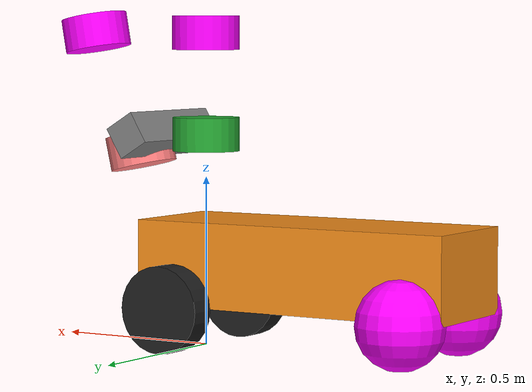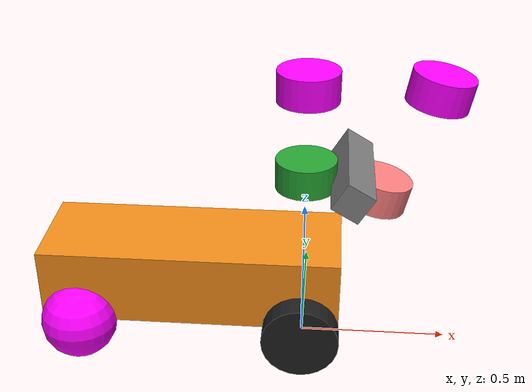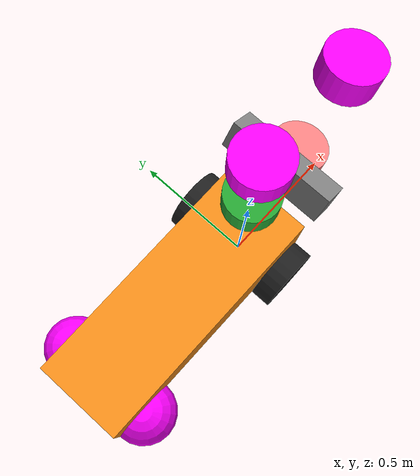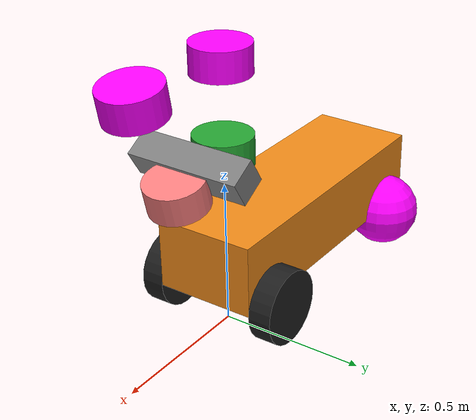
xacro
<?xml version="1.0"?>
<!-- Basic differential drive mobile base -->
<robot xmlns:xacro="http://www.ros.org/wiki/xacro" name="ag1">

  <xacro:include filename="$(find ag_sml_bringup)/urdf/roboclaw_description.urdf.xacro" />

  <!-- Import Rviz colors -->
  <xacro:include filename="$(find ag_sml_bringup)/urdf/roboclaw.materials.xacro" />

  <!-- Import ag1 ros2_control description -->
  <xacro:include filename="$(find ag_sml_bringup)/urdf/roboclaw.ros2_control.xacro" />

  <xacro:ag1_base />

  <xacro:diffbot_ros2_control
    name="roboclaw_controller" />

</robot>

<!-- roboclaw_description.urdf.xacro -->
<robot xmlns:xacro="http://www.ros.org/wiki/xacro">

  <xacro:macro name="ag1_base">

  <!-- Constants for robot dimensions -->
  <xacro:property name="PI" value="3.1415926535897931"/>
  <xacro:property name="base_mass" value="0.3" /> <!-- TODO: Fixme -->
  <xacro:property name="base_width" value="0.35" />
  <xacro:property name="base_length" value="-1.0" />

  <xacro:property name="base_height" value="0.25" />
  <xacro:property name="wheel_mass" value="0.3" /> <!-- TODO: Fixme -->
  <xacro:property name="wheel_len" value="0.080" />
  <xacro:property name="wheel_radius" value="0.128" />
  <xacro:property name="caster_wheel_mass" value="0.1" /> <!-- TODO: Fixme -->
  <xacro:property name="caster_wheel_radius" value="0.128" />

  <xacro:property name="oak_z" value ="0.5"/>
  <xacro:property name="oak_x" value ="0.15"/>
  <xacro:property name="oak_r" value ="0.0"/>
  <xacro:property name="oak_p" value ="0.54"/>

  <link name="base_footprint" />

  <joint name="base_joint" type="fixed">
    <parent link="base_footprint"/>
    <child link="base_link"/>
    <origin xyz="0 0 ${wheel_radius}" rpy="0 0 0"/>
  </joint>

  <link name="base_link">
    <collision>
      <origin xyz="${3*base_length/8} 0 ${wheel_radius}" rpy="0 0 0"/>
      <geometry>
        <box size="${base_length} ${base_width} ${base_height}"/>
      </geometry>
    </collision>

    <visual>
      <origin xyz="${3*base_length/8} 0 ${wheel_radius}" rpy="0 0 0"/>
      <geometry>
        <box size="${base_length} ${base_width} ${base_height}"/>
      </geometry>
      <material name="orange"/>
    </visual>

    <inertial>
      <origin xyz="0 0 0" rpy="0 0 0"/>
      <mass value="${base_mass}"/>
      <inertia
        ixx="${base_mass / 12.0 * (base_length*base_length + base_height*base_height)}" ixy="0.0" ixz="0.0"
        iyy="${base_mass / 12.0 * (base_height*base_height + base_width*base_width)}" iyz="0.0"
        izz="${base_mass / 12.0 * (base_width*base_width + base_length*base_length)}"/>
      </inertial>
    </link>

    <joint name="right_wheel_joint" type="continuous">
      <parent link="base_link"/>
      <child link="right_wheel"/>
      <origin xyz="0 ${-base_width/2 - wheel_len/2} 0" rpy="0 0 0"/>
      <axis xyz="0 1 0"/>

      <dynamics damping="0.2"/>
    </joint>

    <link name="right_wheel">
      <collision>
        <origin xyz="0 0 0" rpy="${PI/2} 0 0"/>
        <geometry>
          <cylinder length="${wheel_len}" radius="${wheel_radius}"/>
        </geometry>
      </collision>

      <visual>
        <origin xyz="0 0 0" rpy="${PI/2} 0 0"/>
        <geometry>
          <cylinder length="${wheel_len}" radius="${wheel_radius}"/>
        </geometry>
        <material name="black"/>
      </visual>

      <inertial>
        <origin xyz="0 0 0" rpy="${PI/2} 0 0"/>
        <mass value="${wheel_mass}"/>
        <inertia
          ixx="${wheel_mass / 12.0 * (3*wheel_radius + wheel_len*wheel_len)}" ixy="0.0" ixz="0.0"
          iyy="${wheel_mass / 12.0 * wheel_radius*wheel_radius}" iyz="0.0"
          izz="${wheel_mass / 12.0 * wheel_radius*wheel_radius}"/>
      </inertial>
    </link>

    <joint name="left_wheel_joint" type="continuous">
      <parent link="base_link"/>
      <child link="left_wheel"/>
      <origin xyz="0 ${base_width/2 + wheel_len/2} 0" rpy="0 0 0"/>
      <axis xyz="0 1 0"/>
      <dynamics damping="0.2"/>
    </joint>

    <link name="left_wheel">
      <collision>
        <origin xyz="0 0 0" rpy="${PI/2} 0 0"/>
        <geometry>
          <cylinder length="${wheel_len}" radius="${wheel_radius}"/>
        </geometry>
      </collision>

      <visual>
        <origin xyz="0 0 0" rpy="${PI/2} 0 0"/>
        <geometry>
          <cylinder length="${wheel_len}" radius="${wheel_radius}"/>
        </geometry>
        <material name="black"/>
      </visual>

      <inertial>
        <origin xyz="0 0 0" rpy="${PI/2} 0 0"/>
        <mass value="${wheel_mass}"/>
        <inertia
          ixx="${wheel_mass / 12.0 * (3*wheel_radius + wheel_len*wheel_len)}" ixy="0.0" ixz="0.0"
          iyy="${wheel_mass / 12.0 * wheel_radius*wheel_radius}" iyz="0.0"
          izz="${wheel_mass / 12.0 * wheel_radius*wheel_radius}"/>
      </inertial>
    </link>

    <joint name="caster_left_wheel_joint" type="fixed">
      <parent link="base_link"/>
      <child link="caster_left_wheel"/>
      <origin xyz="${3*base_length/4} ${base_width/2} ${caster_wheel_radius - wheel_radius}" rpy="0 0 0"/>
    </joint>

    <link name="caster_left_wheel">
      <collision>
        <origin xyz="0 0 0" rpy="0 0 0"/>
        <geometry>
          <sphere radius="${caster_wheel_radius}"/>
        </geometry>
      </collision>

      <visual>
        <origin xyz="0 0 0" rpy="0 0 0"/>
        <geometry>
          <sphere radius="${caster_wheel_radius}"/>
        </geometry>
        <material name="white"/>
      </visual>

      <inertial>
        <origin xyz="0 0 0" rpy="0 0 0"/>
        <mass value="${caster_wheel_mass}"/>
        <inertia
          ixx="${caster_wheel_mass * 0.4 * (caster_wheel_radius * caster_wheel_radius)}" ixy="0.0" ixz="0.0"
          iyy="${caster_wheel_mass * 0.4 * (caster_wheel_radius * caster_wheel_radius)}" iyz="0.0"
          izz="${caster_wheel_mass * 0.4 * (caster_wheel_radius * caster_wheel_radius)}"/>
        </inertial>
      </link>

    <joint name="caster_right_wheel_joint" type="fixed">
      <parent link="base_link"/>
      <child link="caster_right_wheel"/>
      <origin xyz="${3*base_length/4} -${base_width/2} ${caster_wheel_radius - wheel_radius}" rpy="0 0 0"/>
    </joint>

    <link name="caster_right_wheel">
      <collision>
        <origin xyz="0 0 0" rpy="0 0 0"/>
        <geometry>
          <sphere radius="${caster_wheel_radius}"/>
        </geometry>
      </collision>

      <visual>
        <origin xyz="0 0 0" rpy="0 0 0"/>
        <geometry>
          <sphere radius="${caster_wheel_radius}"/>
        </geometry>
        <material name="white"/>
      </visual>

      <inertial>
        <origin xyz="0 0 0" rpy="0 0 0"/>
        <mass value="${caster_wheel_mass}"/>
        <inertia
          ixx="${caster_wheel_mass * 0.4 * (caster_wheel_radius * caster_wheel_radius)}" ixy="0.0" ixz="0.0"
          iyy="${caster_wheel_mass * 0.4 * (caster_wheel_radius * caster_wheel_radius)}" iyz="0.0"
          izz="${caster_wheel_mass * 0.4 * (caster_wheel_radius * caster_wheel_radius)}"/>
        </inertial>
    </link>

      <!-- start -->
       <!-- *********************** IMU SETUP *********************************  -->
  <!--Each sensor must be attached to a link.        -->

    <joint name="imu_joint" type="fixed">
      <parent link="base_link"/>
      <child link="imu_link"/>
      <origin xyz="-0.00 0 0.2" rpy="0 0 0"/>
    </joint>

    <link name="imu_link">
  <visual name="">
              <origin xyz="0.0 0.0 0.0" rpy="0.0 0.0 0.0"/>
              <geometry>
                  <cylinder radius="0.1" length="0.1"/>
              </geometry>
              <material name="not_purple">
                  <color rgba="0.0 0.0 1.0 1.0"/>
                  <texture filename=""/>
              </material>
          </visual>
      </link>
  <!-- *********************** GPS SETUP  **********************************  -->
    <joint name="gps_joint" type="fixed">
      <parent link="base_link"/>
      <child link="gps_link"/>
      <origin xyz="0.0 0 0.8" rpy="0 0 0"/>
    </joint>

    <link name="gps_link">
      <visual name="">
              <origin xyz="0.0 0.0 0.0" rpy="0.0 0.0 0.0"/>
              <geometry>
                  <cylinder radius="0.1" length="0.1"/>
              </geometry>
              <material name="purple">
                  <color rgba="1.0 0.0 1.0 1.0"/>
                  <texture filename=""/>
              </material>
        </visual>
    </link>

    <!-- *********************** Camera SETUP **********************************  -->
    <joint name="camera_joint" type="fixed">
      <parent link="base_link"/>
      <child link="camera_link"/>
      <origin xyz="0.4 0 0.8" rpy="0 0.18 0"/>
    </joint>

    <link name="camera_link">
      <visual name="">
              <origin xyz="0.0 0.0 0.0" rpy="0.0 0.0 0.0"/>
              <geometry>
                  <cylinder radius="0.1" length="0.1"/>
              </geometry>
              <material name="white">
                  <color rgba="1.0 0.0 1.0 1.0"/>
                  <texture filename=""/>
              </material>
        </visual>
    </link>
    <!-- *********************** OAK SETUP **********************************  -->
    <joint name="oak_joint" type="fixed">
      <parent link="base_link"/>
      <child link="oak_link"/>
      <origin xyz="${oak_x} 0 ${oak_z}" rpy="${oak_r} ${oak_p} 0"/>
    </joint>

    <link name="oak_link">
      <visual name="">
          <origin xyz="0. 0.0 0.0" rpy="0.0 0.0 0.0"/>
          <geometry>
              <box size=".1 .4 .1"/>
          </geometry>
          <material name="notsure">
              <color rgba="0.5 0.5 0.5 1.0"/>
              <texture filename=""/>
          </material>
      </visual>
    </link>

        <!-- oak optical -->
    <joint name="oak_opt_joint" type="fixed">
        <parent link="oak_link"/>
        <child link="oak-d-base-frame"/>
        <origin xyz=".1 0 0 " rpy="${0*pi/2} ${-pi/10} ${0*pi/2}"/>
    </joint>

    <link name="oak-d-base-frame">
        <visual name="">
            <origin xyz="0. 0.0 0.0" rpy="0.0 0.0 0.0"/>
            <geometry>
                <cylinder radius="0.1" length="0.1"/>
            </geometry>
            <material name="notsure">
                <color rgba="1.0 0.5 0.5 1.0"/>
                <texture filename=""/>
            </material>
        </visual>
    </link>

      <!-- end -->

      <!-- start ldlarar -->
    <joint name="base_ldlidar_joint" type="fixed">
      <parent link="base_link"/>
      <child link="ldlidar_base"/>
      <origin xyz="0.0 0 0.5" rpy="0 0.0 ${PI}"/>
    </joint>

    <link name="ldlidar_base">
        <visual>

         <origin xyz="0.0 0.0 0.0" rpy="0.0 0.0 0.0"/>
              <geometry>
                  <cylinder radius="0.1" length="0.1"/>
              </geometry>
              <material name="green">
                  <texture filename=""/>
              </material>

        </visual>
    </link>

    <joint name="ldlidar_link_joint" type="fixed">
        <parent link="ldlidar_base"/>
        <child link="ldlidar_link"/>
        <origin xyz="0 0 0.02745" rpy="0 0 0" />
    </joint>

    <link name="ldlidar_link" />

      <!-- end ldladar -->

  </xacro:macro>

</robot>
